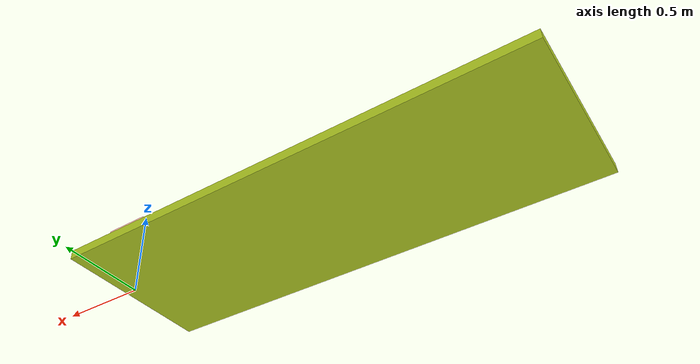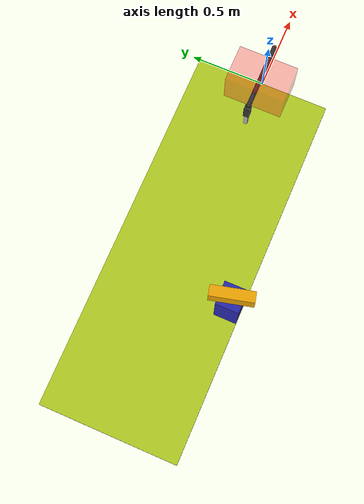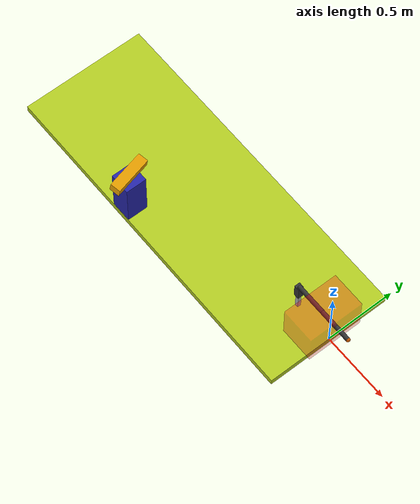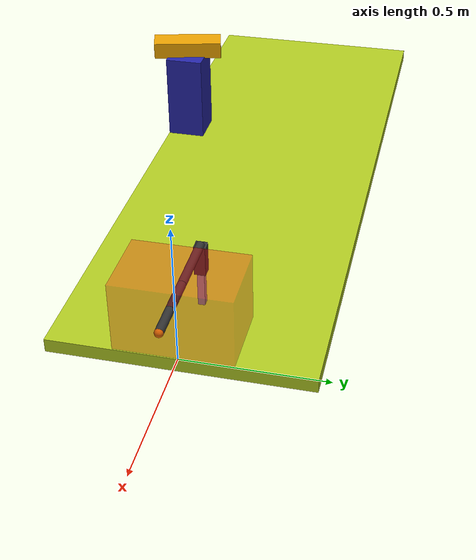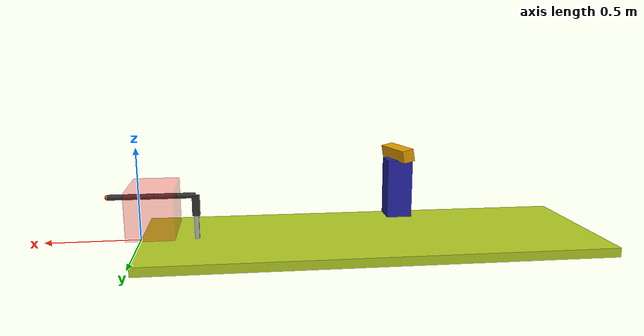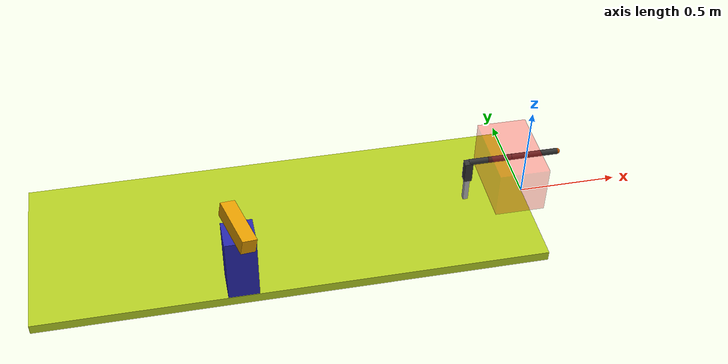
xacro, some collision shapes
<?xml version="1.0"?>
<robot name="icarus" xmlns:xacro="http://ros.org/wiki/xacro">

    <xacro:property name="M_PI" value="3.14159" />

    <!-- Robot Params -->
    <xacro:property name="base_xyz" value="-0.3 0 0" />
    <xacro:property name="base_rpy" value="0 0 0"/>
    <xacro:property name="base_width" value="0.025" />
    <xacro:property name="base_height" value="0.13" />
    <xacro:property name="link_radius" value="0.015" />
    <xacro:property name="link1_length" value="${0.24-base_height}" />
    <xacro:property name="link2_length" value="0.22" />
    <xacro:property name="link3_length" value="0.24" />

    <!-- Workspace for visualization only -->
    <xacro:property name="xlim_l" value="-0.2"/>
    <xacro:property name="xlim_u" value="0.05"/>
    <xacro:property name="ylim_l" value="-0.2"/>
    <xacro:property name="ylim_u" value="0.2"/>
    <xacro:property name="zlim_l" value="0.05"/>
    <xacro:property name="zlim_u" value="0.3"/>
    <xacro:property name="xlim" value="${xlim_u-xlim_l}" />
    <xacro:property name="ylim" value="${ylim_u-ylim_l}" />
    <xacro:property name="zlim" value="${zlim_u-zlim_l}" />

    <!-- Kinect Params -->
    <xacro:property name="cam_px" value="-1.5" />
    <xacro:property name="cam_py" value="-0.3794125" />
    <xacro:property name="cam_pz" value="0.384175" />
    <xacro:property name="cam_or" value="0.0" />
    <xacro:property name="cam_op" value="${10.0*M_PI/180}" />
    <xacro:property name="cam_oy" value="0.244" />
    <xacro:property name="kinect_height" value="0.073" />

    <!-- Table Params -->
    <xacro:property name="table_thickness" value="0.05" />
    <xacro:property name="table_length" value="2.5" />
    <xacro:property name="table_width" value="0.911225" />

    <!-- Macros -->
    <xacro:macro name="material_color" params="name rgba">
        <material name="${name}">
            <color rgba="${rgba}" />
        </material>
    </xacro:macro>

    <xacro:material_color name="default" rgba="0.7 0.7 0.7 1.0" />

    <!-- World -->
    <link name="world" />

    <joint name="world_to_base" type="fixed">
        <origin xyz="${base_xyz}" rpy="${base_rpy}"/>
        <parent link="world"/>
        <child link="base_link" />
    </joint>

    <!-- Robot Arm -->
    <link name="base_link">
        <visual>
            <origin xyz="0 0 ${base_height/2}" />
            <geometry>
                <box size="${base_width} ${base_width} ${base_height}" />
            </geometry>
            <material name="default" />
        </visual>
    </link>

    <joint name="joint1" type="revolute">
        <axis xyz="0 0 1" rpy="0 0 ${M_PI}"/>
        <limit effort="1000.0" lower="${-M_PI/2}" upper="${M_PI/2}" velocity="0.5" />
        <origin xyz="0 0 ${base_height}" />
        <parent link="base_link" />
        <child link="link1" />
    </joint>

    <link name="link1">
        <visual>
            <origin xyz="0 0 ${link1_length/2}" />
            <geometry>
                <box size="0.04 0.04 ${link1_length}" />
            </geometry>
            <xacro:material_color name="black" rgba="0.2 0.2 0.2 1.0" />
        </visual>
    </link>

    <joint name="joint2" type="revolute">
        <axis xyz="0 -1 0" />
        <limit effort="1000.0" lower="${-3/4*M_PI}" upper="${3/4*M_PI}" velocity="0.5" />
        <origin xyz="0 0 ${link1_length}" rpy="0 ${M_PI/2} 0"/>
        <parent link="link1" />
        <child link="link2" />
    </joint>

    <link name="link2">
        <visual>
            <origin xyz="0 0 ${link2_length/2}" />
            <geometry>
                <cylinder radius="${link_radius}" length="${link2_length}" />
            </geometry>
            <material name="black" />
        </visual>
    </link>

    <joint name="joint3" type="revolute">
        <axis xyz="0 -1 0" />
        <limit effort="1000.0" lower="${-3/4*M_PI}" upper="${3/4*M_PI}" velocity="0.5" />
        <origin xyz="0 0 ${link2_length}" />
        <parent link="link2" />
        <child link="link3" />
    </joint>

    <link name="link3">
        <visual>
            <origin xyz="0 0 ${link3_length/2}" />
            <geometry>
                <cylinder radius="${link_radius}" length="${link3_length}" />
            </geometry>
            <material name="black" />
        </visual>
    </link>

    <joint name="link3_to_ee_link" type="fixed">
        <origin xyz="0 0 ${link3_length}" />
        <parent link="link3" />
        <child link="ee_link" />
    </joint>

    <link name="ee_link">
        <visual>
            <origin xyz="0 0 0" />
            <geometry>
                <sphere radius="${link_radius}" />
            </geometry>
        </visual>
    </link>

    <!-- Kinect -->
    <joint name="world_to_kinect" type="fixed">
        <origin xyz="${cam_px} ${cam_py} ${cam_pz}" rpy="${cam_or} ${cam_op} ${cam_oy}"/>
        <parent link="world"/>
        <child link="kinect" />
    </joint>

    <link name="kinect" />

    <joint name="kinect_to_skeleton_frame" type="fixed">
        <origin xyz="0 0 0" rpy="${M_PI/2} 0 ${M_PI/2}" />
        <parent link="kinect" />
        <child link="skeleton_frame" />
    </joint>
    <link name="skeleton_frame" />

    <joint name="kinect_to_camera" type="fixed">
        <origin xyz="0 0 0" rpy="0 0 0"/>
        <parent link="kinect"/>
        <child link="camera"/>
    </joint>

    <link name="camera">
        <visual>
            <origin xyz="0 0 0" rpy="0 0 ${M_PI/2}"/>
            <geometry>
                <mesh filename="package://icarus_description/urdf/meshes/kinect.dae"/>
            </geometry>
        </visual>
        <collision>
            <origin xyz="0.0 0.0 0.0" rpy="0 0 0"/>
            <geometry>
                <box size="0.07271 0.27794 ${kinect_height}"/>
            </geometry>
        </collision>
        <inertial>
            <mass value="0.001" />
            <origin xyz="0 0 0" />
            <inertia ixx="0.0001" ixy="0.0" ixz="0.0"
                     iyy="0.0001" iyz="0.0"
                     izz="0.0001" />
        </inertial>
    </link>

    <!-- Table -->
    <joint name="world_to_table" type="fixed">
        <origin xyz="0 0 0" />
        <parent link="world" />
        <child link="table" />
    </joint>

    <link name="table">
        <visual>
            <origin xyz="${-table_length/2} 0 ${-table_thickness/2}" />
            <geometry>
                <box size="${table_length} ${table_width} ${table_thickness}"/>
            </geometry>
            <material name="yellow">
                <color rgba="0.7 0.8 0.137 1.0" />
            </material>
        </visual>
    </link>

    <joint name="world_to_support" type="fixed">
        <origin xyz="${cam_px} ${cam_py} ${cam_pz/2-kinect_height/4}" />
        <parent link="world" />
        <child link="support" />
    </joint>

    <link name="support">
        <visual>
            <origin xyz="0 0 0" />
            <geometry>
                <box size="0.15 0.15 ${cam_pz-kinect_height/2}"/>
            </geometry>
            <material name="blue">
                <color rgba="0.15 0.15 0.67 1.0" />
            </material>
        </visual>
    </link>

    <joint name="world_to_workspace" type="fixed" >
        <parent link="world"/>
        <child link="workspace"/>
    </joint>

    <link name="workspace" >
        <visual>
            <origin xyz="${xlim_l+xlim/2} ${ylim_l+ylim/2} ${zlim_l+zlim/2}" />
            <geometry>
                <box size="${xlim} ${ylim} ${zlim}" />
            </geometry>
            <material name="red_trans">
                <color rgba="1 0 0 0.3" />
            </material>
        </visual>
    </link>

</robot>
